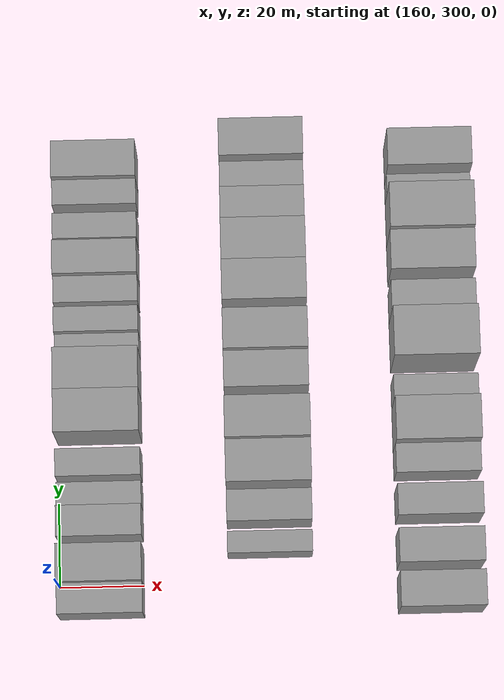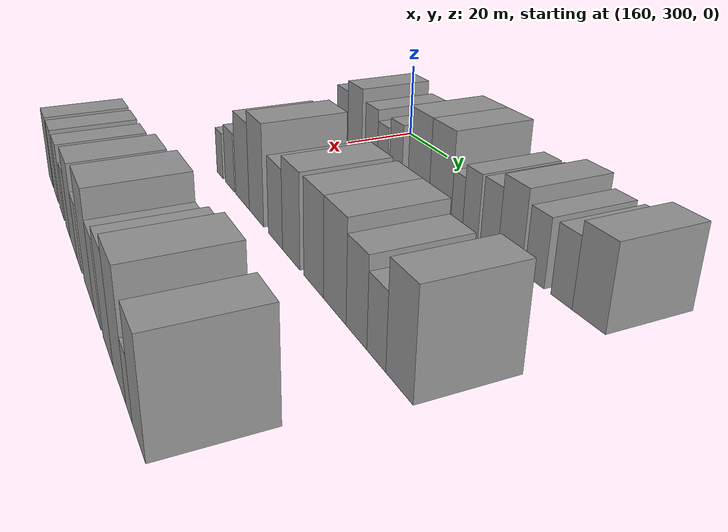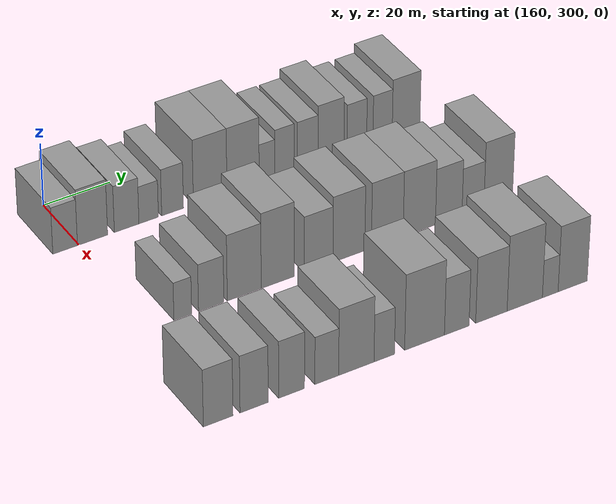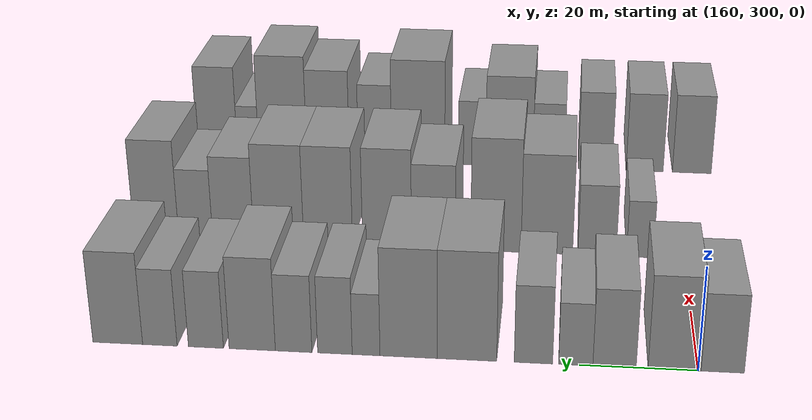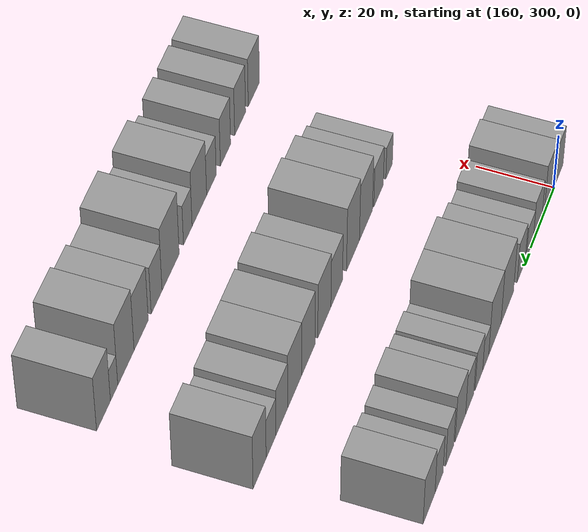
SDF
<sdf version="1.6">
 <world name="default">
  <model name="building_516">
   <static>1</static>
   <pose>170.0000 295.9312 0 0.000000 0.000000 0.000000</pose>
   <link name="link">
    <pose>0 0 7.50 0 0 0</pose>
    <collision name="collision"><geometry><box><size>20.0000 7.2151 15.0000</size></box></geometry></collision>
    <visual name="visual">
     <cast_shadows>0</cast_shadows>
     <geometry><box><size>20.0000 7.2151 15.0000</size></box></geometry>
     <material>
      <script>
       <uri>model://grey_wall/materials/scripts</uri>
       <uri>model://grey_wall/materials/textures</uri>
       <name>vrc/grey_wall</name>
      </script>
     </material>
    </visual>
   </link>
  </model>
  <model name="building_517">
   <static>1</static>
   <pose>170.0000 303.9941 0 0.000000 0.000000 0.000000</pose>
   <link name="link">
    <pose>0 0 9.00 0 0 0</pose>
    <collision name="collision"><geometry><box><size>20.0000 8.9107 18.0000</size></box></geometry></collision>
    <visual name="visual">
     <cast_shadows>0</cast_shadows>
     <geometry><box><size>20.0000 8.9107 18.0000</size></box></geometry>
     <material>
      <script>
       <uri>model://grey_wall/materials/scripts</uri>
       <uri>model://grey_wall/materials/textures</uri>
       <name>vrc/grey_wall</name>
      </script>
     </material>
    </visual>
   </link>
  </model>
  <model name="building_518">
   <static>1</static>
   <pose>170.0000 314.1108 0 0.000000 0.000000 0.000000</pose>
   <link name="link">
    <pose>0 0 7.50 0 0 0</pose>
    <collision name="collision"><geometry><box><size>20.0000 7.3228 15.0000</size></box></geometry></collision>
    <visual name="visual">
     <cast_shadows>0</cast_shadows>
     <geometry><box><size>20.0000 7.3228 15.0000</size></box></geometry>
     <material>
      <script>
       <uri>model://grey_wall/materials/scripts</uri>
       <uri>model://grey_wall/materials/textures</uri>
       <name>vrc/grey_wall</name>
      </script>
     </material>
    </visual>
   </link>
  </model>
  <model name="building_519">
   <static>1</static>
   <pose>170.0000 320.6827 0 0.000000 0.000000 0.000000</pose>
   <link name="link">
    <pose>0 0 6.00 0 0 0</pose>
    <collision name="collision"><geometry><box><size>20.0000 5.8210 12.0000</size></box></geometry></collision>
    <visual name="visual">
     <cast_shadows>0</cast_shadows>
     <geometry><box><size>20.0000 5.8210 12.0000</size></box></geometry>
     <material>
      <script>
       <uri>model://grey_wall/materials/scripts</uri>
       <uri>model://grey_wall/materials/textures</uri>
       <name>vrc/grey_wall</name>
      </script>
     </material>
    </visual>
   </link>
  </model>
  <model name="building_520">
   <static>1</static>
   <pose>170.0000 327.8702 0 0.000000 0.000000 0.000000</pose>
   <link name="link">
    <pose>0 0 7.50 0 0 0</pose>
    <collision name="collision"><geometry><box><size>20.0000 6.5540 15.0000</size></box></geometry></collision>
    <visual name="visual">
     <cast_shadows>0</cast_shadows>
     <geometry><box><size>20.0000 6.5540 15.0000</size></box></geometry>
     <material>
      <script>
       <uri>model://grey_wall/materials/scripts</uri>
       <uri>model://grey_wall/materials/textures</uri>
       <name>vrc/grey_wall</name>
      </script>
     </material>
    </visual>
   </link>
  </model>
  <model name="building_521">
   <static>1</static>
   <pose>170.0000 339.2528 0 0.000000 0.000000 0.000000</pose>
   <link name="link">
    <pose>0 0 10.50 0 0 0</pose>
    <collision name="collision"><geometry><box><size>20.0000 10.2112 21.0000</size></box></geometry></collision>
    <visual name="visual">
     <cast_shadows>0</cast_shadows>
     <geometry><box><size>20.0000 10.2112 21.0000</size></box></geometry>
     <material>
      <script>
       <uri>model://grey_wall/materials/scripts</uri>
       <uri>model://grey_wall/materials/textures</uri>
       <name>vrc/grey_wall</name>
      </script>
     </material>
    </visual>
   </link>
  </model>
  <model name="building_522">
   <static>1</static>
   <pose>170.0000 349.2987 0 0.000000 0.000000 0.000000</pose>
   <link name="link">
    <pose>0 0 10.50 0 0 0</pose>
    <collision name="collision"><geometry><box><size>20.0000 9.8807 21.0000</size></box></geometry></collision>
    <visual name="visual">
     <cast_shadows>0</cast_shadows>
     <geometry><box><size>20.0000 9.8807 21.0000</size></box></geometry>
     <material>
      <script>
       <uri>model://grey_wall/materials/scripts</uri>
       <uri>model://grey_wall/materials/textures</uri>
       <name>vrc/grey_wall</name>
      </script>
     </material>
    </visual>
   </link>
  </model>
  <model name="building_523">
   <static>1</static>
   <pose>170.0000 356.6484 0 0.000000 0.000000 0.000000</pose>
   <link name="link">
    <pose>0 0 6.00 0 0 0</pose>
    <collision name="collision"><geometry><box><size>20.0000 4.8186 12.0000</size></box></geometry></collision>
    <visual name="visual">
     <cast_shadows>0</cast_shadows>
     <geometry><box><size>20.0000 4.8186 12.0000</size></box></geometry>
     <material>
      <script>
       <uri>model://grey_wall/materials/scripts</uri>
       <uri>model://grey_wall/materials/textures</uri>
       <name>vrc/grey_wall</name>
      </script>
     </material>
    </visual>
   </link>
  </model>
  <model name="building_524">
   <static>1</static>
   <pose>170.0000 362.0639 0 0.000000 0.000000 0.000000</pose>
   <link name="link">
    <pose>0 0 7.50 0 0 0</pose>
    <collision name="collision"><geometry><box><size>20.0000 6.0124 15.0000</size></box></geometry></collision>
    <visual name="visual">
     <cast_shadows>0</cast_shadows>
     <geometry><box><size>20.0000 6.0124 15.0000</size></box></geometry>
     <material>
      <script>
       <uri>model://grey_wall/materials/scripts</uri>
       <uri>model://grey_wall/materials/textures</uri>
       <name>vrc/grey_wall</name>
      </script>
     </material>
    </visual>
   </link>
  </model>
  <model name="building_525">
   <static>1</static>
   <pose>170.0000 369.2673 0 0.000000 0.000000 0.000000</pose>
   <link name="link">
    <pose>0 0 7.50 0 0 0</pose>
    <collision name="collision"><geometry><box><size>20.0000 6.3944 15.0000</size></box></geometry></collision>
    <visual name="visual">
     <cast_shadows>0</cast_shadows>
     <geometry><box><size>20.0000 6.3944 15.0000</size></box></geometry>
     <material>
      <script>
       <uri>model://grey_wall/materials/scripts</uri>
       <uri>model://grey_wall/materials/textures</uri>
       <name>vrc/grey_wall</name>
      </script>
     </material>
    </visual>
   </link>
  </model>
  <model name="building_526">
   <static>1</static>
   <pose>170.0000 376.5287 0 0.000000 0.000000 0.000000</pose>
   <link name="link">
    <pose>0 0 9.00 0 0 0</pose>
    <collision name="collision"><geometry><box><size>20.0000 8.1284 18.0000</size></box></geometry></collision>
    <visual name="visual">
     <cast_shadows>0</cast_shadows>
     <geometry><box><size>20.0000 8.1284 18.0000</size></box></geometry>
     <material>
      <script>
       <uri>model://grey_wall/materials/scripts</uri>
       <uri>model://grey_wall/materials/textures</uri>
       <name>vrc/grey_wall</name>
      </script>
     </material>
    </visual>
   </link>
  </model>
  <model name="building_527">
   <static>1</static>
   <pose>170.0000 384.6836 0 0.000000 0.000000 0.000000</pose>
   <link name="link">
    <pose>0 0 7.50 0 0 0</pose>
    <collision name="collision"><geometry><box><size>20.0000 6.1813 15.0000</size></box></geometry></collision>
    <visual name="visual">
     <cast_shadows>0</cast_shadows>
     <geometry><box><size>20.0000 6.1813 15.0000</size></box></geometry>
     <material>
      <script>
       <uri>model://grey_wall/materials/scripts</uri>
       <uri>model://grey_wall/materials/textures</uri>
       <name>vrc/grey_wall</name>
      </script>
     </material>
    </visual>
   </link>
  </model>
  <model name="building_528">
   <static>1</static>
   <pose>170.0000 392.8316 0 0.000000 0.000000 0.000000</pose>
   <link name="link">
    <pose>0 0 7.50 0 0 0</pose>
    <collision name="collision"><geometry><box><size>20.0000 6.1148 15.0000</size></box></geometry></collision>
    <visual name="visual">
     <cast_shadows>0</cast_shadows>
     <geometry><box><size>20.0000 6.1148 15.0000</size></box></geometry>
     <material>
      <script>
       <uri>model://grey_wall/materials/scripts</uri>
       <uri>model://grey_wall/materials/textures</uri>
       <name>vrc/grey_wall</name>
      </script>
     </material>
    </visual>
   </link>
  </model>
  <model name="building_529">
   <static>1</static>
   <pose>170.0000 400.3214 0 0.000000 0.000000 0.000000</pose>
   <link name="link">
    <pose>0 0 9.00 0 0 0</pose>
    <collision name="collision"><geometry><box><size>20.0000 8.8647 18.0000</size></box></geometry></collision>
    <visual name="visual">
     <cast_shadows>0</cast_shadows>
     <geometry><box><size>20.0000 8.8647 18.0000</size></box></geometry>
     <material>
      <script>
       <uri>model://grey_wall/materials/scripts</uri>
       <uri>model://grey_wall/materials/textures</uri>
       <name>vrc/grey_wall</name>
      </script>
     </material>
    </visual>
   </link>
  </model>
  <model name="building_654">
   <static>1</static>
   <pose>210.0000 308.5311 0 0.000000 0.000000 0.000000</pose>
   <link name="link">
    <pose>0 0 6.00 0 0 0</pose>
    <collision name="collision"><geometry><box><size>20.0000 5.1553 12.0000</size></box></geometry></collision>
    <visual name="visual">
     <cast_shadows>0</cast_shadows>
     <geometry><box><size>20.0000 5.1553 12.0000</size></box></geometry>
     <material>
      <script>
       <uri>model://grey_wall/materials/scripts</uri>
       <uri>model://grey_wall/materials/textures</uri>
       <name>vrc/grey_wall</name>
      </script>
     </material>
    </visual>
   </link>
  </model>
  <model name="building_655">
   <static>1</static>
   <pose>210.0000 316.8214 0 0.000000 0.000000 0.000000</pose>
   <link name="link">
    <pose>0 0 7.50 0 0 0</pose>
    <collision name="collision"><geometry><box><size>20.0000 7.4251 15.0000</size></box></geometry></collision>
    <visual name="visual">
     <cast_shadows>0</cast_shadows>
     <geometry><box><size>20.0000 7.4251 15.0000</size></box></geometry>
     <material>
      <script>
       <uri>model://grey_wall/materials/scripts</uri>
       <uri>model://grey_wall/materials/textures</uri>
       <name>vrc/grey_wall</name>
      </script>
     </material>
    </visual>
   </link>
  </model>
  <model name="building_656">
   <static>1</static>
   <pose>210.0000 326.5439 0 0.000000 0.000000 0.000000</pose>
   <link name="link">
    <pose>0 0 10.50 0 0 0</pose>
    <collision name="collision"><geometry><box><size>20.0000 10.0200 21.0000</size></box></geometry></collision>
    <visual name="visual">
     <cast_shadows>0</cast_shadows>
     <geometry><box><size>20.0000 10.0200 21.0000</size></box></geometry>
     <material>
      <script>
       <uri>model://grey_wall/materials/scripts</uri>
       <uri>model://grey_wall/materials/textures</uri>
       <name>vrc/grey_wall</name>
      </script>
     </material>
    </visual>
   </link>
  </model>
  <model name="building_657">
   <static>1</static>
   <pose>210.0000 336.4623 0 0.000000 0.000000 0.000000</pose>
   <link name="link">
    <pose>0 0 12.00 0 0 0</pose>
    <collision name="collision"><geometry><box><size>20.0000 9.8168 24.0000</size></box></geometry></collision>
    <visual name="visual">
     <cast_shadows>0</cast_shadows>
     <geometry><box><size>20.0000 9.8168 24.0000</size></box></geometry>
     <material>
      <script>
       <uri>model://grey_wall/materials/scripts</uri>
       <uri>model://grey_wall/materials/textures</uri>
       <name>vrc/grey_wall</name>
      </script>
     </material>
    </visual>
   </link>
  </model>
  <model name="building_658">
   <static>1</static>
   <pose>210.0000 348.7008 0 0.000000 0.000000 0.000000</pose>
   <link name="link">
    <pose>0 0 9.00 0 0 0</pose>
    <collision name="collision"><geometry><box><size>20.0000 8.6602 18.0000</size></box></geometry></collision>
    <visual name="visual">
     <cast_shadows>0</cast_shadows>
     <geometry><box><size>20.0000 8.6602 18.0000</size></box></geometry>
     <material>
      <script>
       <uri>model://grey_wall/materials/scripts</uri>
       <uri>model://grey_wall/materials/textures</uri>
       <name>vrc/grey_wall</name>
      </script>
     </material>
    </visual>
   </link>
  </model>
  <model name="building_659">
   <static>1</static>
   <pose>210.0000 357.8621 0 0.000000 0.000000 0.000000</pose>
   <link name="link">
    <pose>0 0 10.50 0 0 0</pose>
    <collision name="collision"><geometry><box><size>20.0000 9.6624 21.0000</size></box></geometry></collision>
    <visual name="visual">
     <cast_shadows>0</cast_shadows>
     <geometry><box><size>20.0000 9.6624 21.0000</size></box></geometry>
     <material>
      <script>
       <uri>model://grey_wall/materials/scripts</uri>
       <uri>model://grey_wall/materials/textures</uri>
       <name>vrc/grey_wall</name>
      </script>
     </material>
    </visual>
   </link>
  </model>
  <model name="building_660">
   <static>1</static>
   <pose>210.0000 369.5518 0 0.000000 0.000000 0.000000</pose>
   <link name="link">
    <pose>0 0 10.50 0 0 0</pose>
    <collision name="collision"><geometry><box><size>20.0000 9.7170 21.0000</size></box></geometry></collision>
    <visual name="visual">
     <cast_shadows>0</cast_shadows>
     <geometry><box><size>20.0000 9.7170 21.0000</size></box></geometry>
     <material>
      <script>
       <uri>model://grey_wall/materials/scripts</uri>
       <uri>model://grey_wall/materials/textures</uri>
       <name>vrc/grey_wall</name>
      </script>
     </material>
    </visual>
   </link>
  </model>
  <model name="building_661">
   <static>1</static>
   <pose>210.0000 379.3986 0 0.000000 0.000000 0.000000</pose>
   <link name="link">
    <pose>0 0 10.50 0 0 0</pose>
    <collision name="collision"><geometry><box><size>20.0000 9.9766 21.0000</size></box></geometry></collision>
    <visual name="visual">
     <cast_shadows>0</cast_shadows>
     <geometry><box><size>20.0000 9.9766 21.0000</size></box></geometry>
     <material>
      <script>
       <uri>model://grey_wall/materials/scripts</uri>
       <uri>model://grey_wall/materials/textures</uri>
       <name>vrc/grey_wall</name>
      </script>
     </material>
    </visual>
   </link>
  </model>
  <model name="building_662">
   <static>1</static>
   <pose>210.0000 388.5131 0 0.000000 0.000000 0.000000</pose>
   <link name="link">
    <pose>0 0 9.00 0 0 0</pose>
    <collision name="collision"><geometry><box><size>20.0000 8.2525 18.0000</size></box></geometry></collision>
    <visual name="visual">
     <cast_shadows>0</cast_shadows>
     <geometry><box><size>20.0000 8.2525 18.0000</size></box></geometry>
     <material>
      <script>
       <uri>model://grey_wall/materials/scripts</uri>
       <uri>model://grey_wall/materials/textures</uri>
       <name>vrc/grey_wall</name>
      </script>
     </material>
    </visual>
   </link>
  </model>
  <model name="building_663">
   <static>1</static>
   <pose>210.0000 396.0645 0 0.000000 0.000000 0.000000</pose>
   <link name="link">
    <pose>0 0 7.50 0 0 0</pose>
    <collision name="collision"><geometry><box><size>20.0000 6.8502 15.0000</size></box></geometry></collision>
    <visual name="visual">
     <cast_shadows>0</cast_shadows>
     <geometry><box><size>20.0000 6.8502 15.0000</size></box></geometry>
     <material>
      <script>
       <uri>model://grey_wall/materials/scripts</uri>
       <uri>model://grey_wall/materials/textures</uri>
       <name>vrc/grey_wall</name>
      </script>
     </material>
    </visual>
   </link>
  </model>
  <model name="building_664">
   <static>1</static>
   <pose>210.0000 404.0021 0 0.000000 0.000000 0.000000</pose>
   <link name="link">
    <pose>0 0 10.50 0 0 0</pose>
    <collision name="collision"><geometry><box><size>20.0000 9.0250 21.0000</size></box></geometry></collision>
    <visual name="visual">
     <cast_shadows>0</cast_shadows>
     <geometry><box><size>20.0000 9.0250 21.0000</size></box></geometry>
     <material>
      <script>
       <uri>model://grey_wall/materials/scripts</uri>
       <uri>model://grey_wall/materials/textures</uri>
       <name>vrc/grey_wall</name>
      </script>
     </material>
    </visual>
   </link>
  </model>
  <model name="building_784">
   <static>1</static>
   <pose>250.0000 296.0469 0 0.000000 0.000000 0.000000</pose>
   <link name="link">
    <pose>0 0 9.00 0 0 0</pose>
    <collision name="collision"><geometry><box><size>20.0000 8.3477 18.0000</size></box></geometry></collision>
    <visual name="visual">
     <cast_shadows>0</cast_shadows>
     <geometry><box><size>20.0000 8.3477 18.0000</size></box></geometry>
     <material>
      <script>
       <uri>model://grey_wall/materials/scripts</uri>
       <uri>model://grey_wall/materials/textures</uri>
       <name>vrc/grey_wall</name>
      </script>
     </material>
    </visual>
   </link>
  </model>
  <model name="building_785">
   <static>1</static>
   <pose>250.0000 306.2286 0 0.000000 0.000000 0.000000</pose>
   <link name="link">
    <pose>0 0 9.00 0 0 0</pose>
    <collision name="collision"><geometry><box><size>20.0000 8.0159 18.0000</size></box></geometry></collision>
    <visual name="visual">
     <cast_shadows>0</cast_shadows>
     <geometry><box><size>20.0000 8.0159 18.0000</size></box></geometry>
     <material>
      <script>
       <uri>model://grey_wall/materials/scripts</uri>
       <uri>model://grey_wall/materials/textures</uri>
       <name>vrc/grey_wall</name>
      </script>
     </material>
    </visual>
   </link>
  </model>
  <model name="building_786">
   <static>1</static>
   <pose>250.0000 316.9375 0 0.000000 0.000000 0.000000</pose>
   <link name="link">
    <pose>0 0 9.00 0 0 0</pose>
    <collision name="collision"><geometry><box><size>20.0000 7.4018 18.0000</size></box></geometry></collision>
    <visual name="visual">
     <cast_shadows>0</cast_shadows>
     <geometry><box><size>20.0000 7.4018 18.0000</size></box></geometry>
     <material>
      <script>
       <uri>model://grey_wall/materials/scripts</uri>
       <uri>model://grey_wall/materials/textures</uri>
       <name>vrc/grey_wall</name>
      </script>
     </material>
    </visual>
   </link>
  </model>
  <model name="building_787">
   <static>1</static>
   <pose>250.0000 327.0874 0 0.000000 0.000000 0.000000</pose>
   <link name="link">
    <pose>0 0 7.50 0 0 0</pose>
    <collision name="collision"><geometry><box><size>20.0000 6.8980 15.0000</size></box></geometry></collision>
    <visual name="visual">
     <cast_shadows>0</cast_shadows>
     <geometry><box><size>20.0000 6.8980 15.0000</size></box></geometry>
     <material>
      <script>
       <uri>model://grey_wall/materials/scripts</uri>
       <uri>model://grey_wall/materials/textures</uri>
       <name>vrc/grey_wall</name>
      </script>
     </material>
    </visual>
   </link>
  </model>
  <model name="building_788">
   <static>1</static>
   <pose>250.0000 335.6998 0 0.000000 0.000000 0.000000</pose>
   <link name="link">
    <pose>0 0 10.50 0 0 0</pose>
    <collision name="collision"><geometry><box><size>20.0000 10.3267 21.0000</size></box></geometry></collision>
    <visual name="visual">
     <cast_shadows>0</cast_shadows>
     <geometry><box><size>20.0000 10.3267 21.0000</size></box></geometry>
     <material>
      <script>
       <uri>model://grey_wall/materials/scripts</uri>
       <uri>model://grey_wall/materials/textures</uri>
       <name>vrc/grey_wall</name>
      </script>
     </material>
    </visual>
   </link>
  </model>
  <model name="building_789">
   <static>1</static>
   <pose>250.0000 343.8724 0 0.000000 0.000000 0.000000</pose>
   <link name="link">
    <pose>0 0 7.50 0 0 0</pose>
    <collision name="collision"><geometry><box><size>20.0000 6.0184 15.0000</size></box></geometry></collision>
    <visual name="visual">
     <cast_shadows>0</cast_shadows>
     <geometry><box><size>20.0000 6.0184 15.0000</size></box></geometry>
     <material>
      <script>
       <uri>model://grey_wall/materials/scripts</uri>
       <uri>model://grey_wall/materials/textures</uri>
       <name>vrc/grey_wall</name>
      </script>
     </material>
    </visual>
   </link>
  </model>
  <model name="building_790">
   <static>1</static>
   <pose>250.0000 355.7926 0 0.000000 0.000000 0.000000</pose>
   <link name="link">
    <pose>0 0 12.00 0 0 0</pose>
    <collision name="collision"><geometry><box><size>20.0000 11.8221 24.0000</size></box></geometry></collision>
    <visual name="visual">
     <cast_shadows>0</cast_shadows>
     <geometry><box><size>20.0000 11.8221 24.0000</size></box></geometry>
     <material>
      <script>
       <uri>model://grey_wall/materials/scripts</uri>
       <uri>model://grey_wall/materials/textures</uri>
       <name>vrc/grey_wall</name>
      </script>
     </material>
    </visual>
   </link>
  </model>
  <model name="building_791">
   <static>1</static>
   <pose>250.0000 365.3910 0 0.000000 0.000000 0.000000</pose>
   <link name="link">
    <pose>0 0 9.00 0 0 0</pose>
    <collision name="collision"><geometry><box><size>20.0000 7.3746 18.0000</size></box></geometry></collision>
    <visual name="visual">
     <cast_shadows>0</cast_shadows>
     <geometry><box><size>20.0000 7.3746 18.0000</size></box></geometry>
     <material>
      <script>
       <uri>model://grey_wall/materials/scripts</uri>
       <uri>model://grey_wall/materials/textures</uri>
       <name>vrc/grey_wall</name>
      </script>
     </material>
    </visual>
   </link>
  </model>
  <model name="building_792">
   <static>1</static>
   <pose>250.0000 375.8291 0 0.000000 0.000000 0.000000</pose>
   <link name="link">
    <pose>0 0 10.50 0 0 0</pose>
    <collision name="collision"><geometry><box><size>20.0000 9.5016 21.0000</size></box></geometry></collision>
    <visual name="visual">
     <cast_shadows>0</cast_shadows>
     <geometry><box><size>20.0000 9.5016 21.0000</size></box></geometry>
     <material>
      <script>
       <uri>model://grey_wall/materials/scripts</uri>
       <uri>model://grey_wall/materials/textures</uri>
       <name>vrc/grey_wall</name>
      </script>
     </material>
    </visual>
   </link>
  </model>
  <model name="building_793">
   <static>1</static>
   <pose>250.0000 385.9639 0 0.000000 0.000000 0.000000</pose>
   <link name="link">
    <pose>0 0 12.00 0 0 0</pose>
    <collision name="collision"><geometry><box><size>20.0000 10.7681 24.0000</size></box></geometry></collision>
    <visual name="visual">
     <cast_shadows>0</cast_shadows>
     <geometry><box><size>20.0000 10.7681 24.0000</size></box></geometry>
     <material>
      <script>
       <uri>model://grey_wall/materials/scripts</uri>
       <uri>model://grey_wall/materials/textures</uri>
       <name>vrc/grey_wall</name>
      </script>
     </material>
    </visual>
   </link>
  </model>
  <model name="building_794">
   <static>1</static>
   <pose>250.0000 393.7595 0 0.000000 0.000000 0.000000</pose>
   <link name="link">
    <pose>0 0 6.00 0 0 0</pose>
    <collision name="collision"><geometry><box><size>20.0000 4.8229 12.0000</size></box></geometry></collision>
    <visual name="visual">
     <cast_shadows>0</cast_shadows>
     <geometry><box><size>20.0000 4.8229 12.0000</size></box></geometry>
     <material>
      <script>
       <uri>model://grey_wall/materials/scripts</uri>
       <uri>model://grey_wall/materials/textures</uri>
       <name>vrc/grey_wall</name>
      </script>
     </material>
    </visual>
   </link>
  </model>
  <model name="building_795">
   <static>1</static>
   <pose>250.0000 400.6661 0 0.000000 0.000000 0.000000</pose>
   <link name="link">
    <pose>0 0 10.50 0 0 0</pose>
    <collision name="collision"><geometry><box><size>20.0000 8.9903 21.0000</size></box></geometry></collision>
    <visual name="visual">
     <cast_shadows>0</cast_shadows>
     <geometry><box><size>20.0000 8.9903 21.0000</size></box></geometry>
     <material>
      <script>
       <uri>model://grey_wall/materials/scripts</uri>
       <uri>model://grey_wall/materials/textures</uri>
       <name>vrc/grey_wall</name>
      </script>
     </material>
    </visual>
   </link>
  </model>
 </world>
</sdf>
